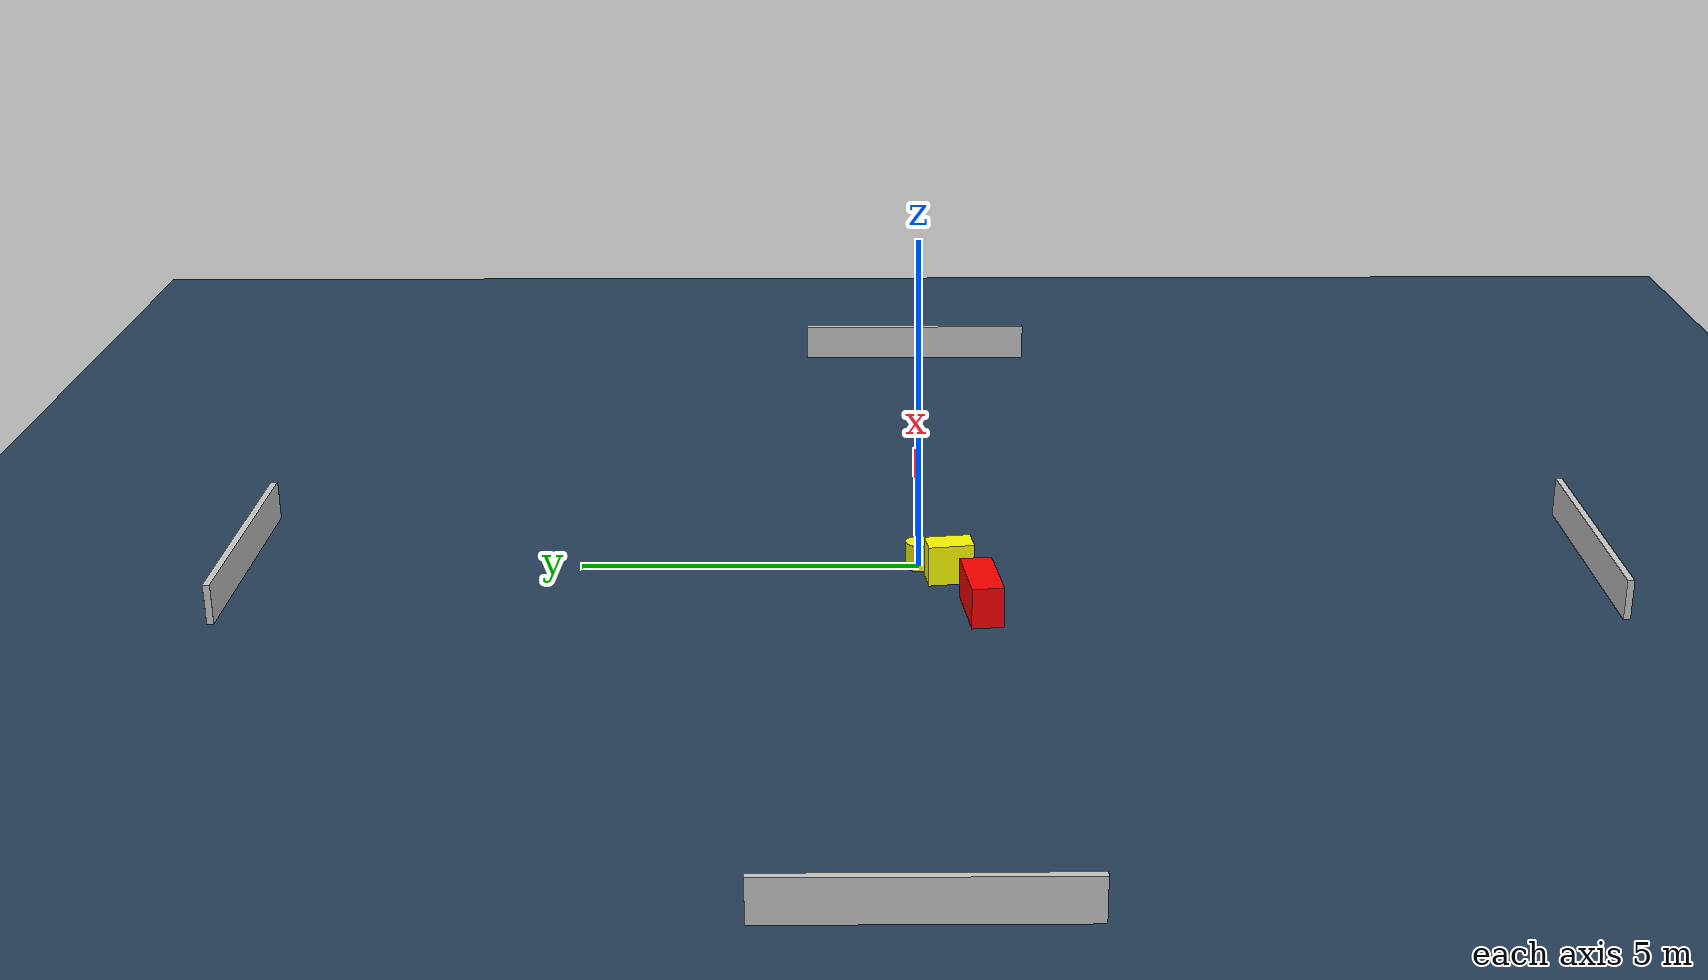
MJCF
<?xml version="1.0" ?>
<mujoco model="generated_environment">
  <option timestep="0.01" integrator="RK4" cone="elliptic"/>
  <default>
    <geom density="1"/>
  </default>
  <asset>
    <texture builtin="gradient" height="3072" name="skybox" rgb1="0.3 0.5 0.7" rgb2="0 0 0" type="skybox" width="512"/>
    <texture builtin="checker" height="300" name="groundplane" rgb1="0.2 0.3 0.4" rgb2="0.1 0.2 0.3" type="2d" width="300"/>
    <material name="groundplane" reflectance="0.2" texrepeat="5 5" texture="groundplane"/>
  </asset>
  <worldbody>
    <light dir="0 0 -1" directional="true" pos="0 0 1.5"/>
    <geom condim="3" friction="0.5 0.005 0.001" material="groundplane" name="floor" pos="0 0 0" size="0 0 0.05" type="plane"/>
    <body name="walls">
      <geom name="wall_1" condim="4" pos="-10.0 0.0 0.3" rgba="0.800000011920929 0.800000011920929 0.800000011920929 1.0" size="0.05 2.0 0.3" type="box"/>
      <geom name="wall_2" condim="4" pos="10.0 0.0 0.3" rgba="0.800000011920929 0.800000011920929 0.800000011920929 1.0" size="0.05 2.0 0.3" type="box"/>
      <geom name="wall_3" condim="4" pos="0.0 -10.0 0.3" rgba="0.800000011920929 0.800000011920929 0.800000011920929 1.0" size="2.0 0.05 0.3" type="box"/>
      <geom name="wall_4" condim="4" pos="0.0 10.0 0.3" rgba="0.800000011920929 0.800000011920929 0.800000011920929 1.0" size="2.0 0.05 0.3" type="box"/>
    </body>
    <body name="robot">
      <joint name="joint_x" type="slide" pos="0 0 0" axis="1 0 0"/>
      <joint name="joint_y" type="slide" pos="0 0 0" axis="0 1 0"/>
      <geom name="robot" type="cylinder" pos="0.0 0.0 0.2" size="0.2 0.2 0.0" mass="5.0" friction="1.0 0.005 0.0001" condim="4" rgba="1.0 1.0 0.0 1.0"/>
    </body>
    <body name="obstacle_1_movable">
      <geom name="obstacle_1_movable" condim="4" pos="-0.4777195511943746 -0.4422726043416464 0.3" euler="0 0 8.482473419561764" friction="0.0 0.005 0.001" rgba="1.0 1.0 0.0 1.0" size="0.21016949397089793 0.33904182984924114 0.3" type="box" mass="0.1"/>
      <joint type="free"/>
    </body>
    <body name="obstacle_2_static">
      <geom name="obstacle_2_static" condim="4" pos="-1.6586371041105084 -0.8778606689268337 0.3" euler="0 0 97.35332976080483" friction="0.0 0.005 0.001" rgba="1.0 0.0 0.0 1.0" size="0.23010444932875607 0.5624917039248818 0.3" type="box"/>
    </body>
  </worldbody>
  <actuator>
    <motor name="actuator_x" joint="joint_x" gear="1" ctrlrange="-1 1"/>
    <motor name="actuator_y" joint="joint_y" gear="1" ctrlrange="-1 1"/>
  </actuator>
</mujoco>
